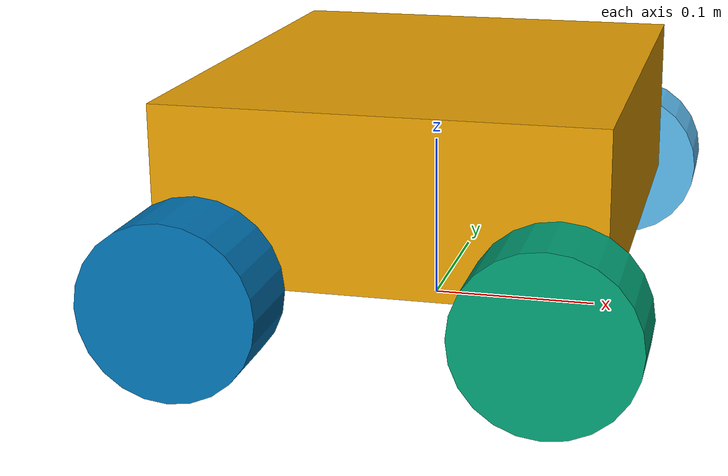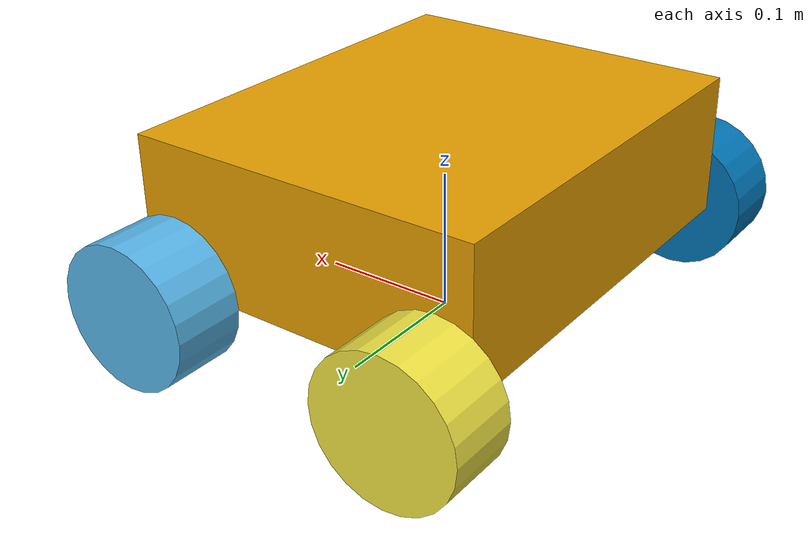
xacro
<?xml version="1.0" ?>
<!-- |    This document was autogenerated by xacro from ../../../src/nucobot/src/nucobot_simulator/nucobot_description/sdf/model.urdf | -->
<!-- |    EDITING THIS FILE BY HAND IS NOT RECOMMENDED                                 | -->
<robot name="nucobot">
  <joint name="nucobot__left_front_wheel_hinge" type="fixed">
    <parent link="nucobot__chassis"/>
    <child link="nucobot__left_front_wheel"/>
    <origin rpy="0      1.5707  1.5707" xyz="0.09999  0.14499  0.04999"/>
    <axis xyz="9.00000000e-05   9.00000000e-05   1.00000000e+00"/>
    <limit effort="0" lower="0" upper="0" velocity="0"/>
  </joint>
  <joint name="nucobot__right_front_wheel_hinge" type="fixed">
    <parent link="nucobot__chassis"/>
    <child link="nucobot__right_front_wheel"/>
    <origin rpy="0      1.5707  1.5707" xyz="0.1     -0.14499  0.05"/>
    <axis xyz="9.00000000e-05   9.00000000e-05   1.00000000e+00"/>
    <limit effort="0" lower="0" upper="0" velocity="0"/>
  </joint>
  <joint name="nucobot__left_back_wheel_hinge" type="fixed">
    <parent link="nucobot__chassis"/>
    <child link="nucobot__left_back_wheel"/>
    <origin rpy="0      1.5707  1.5707" xyz="-0.1      0.14499  0.04999"/>
    <axis xyz="9.00000000e-05   9.00000000e-05   1.00000000e+00"/>
    <limit effort="0" lower="0" upper="0" velocity="0"/>
  </joint>
  <joint name="nucobot__right_back_wheel_hinge" type="fixed">
    <parent link="nucobot__chassis"/>
    <child link="nucobot__right_back_wheel"/>
    <origin rpy="0      1.5707  1.5707" xyz="-0.09999 -0.14499  0.05"/>
    <axis xyz="9.00000000e-05   9.00000000e-05   1.00000000e+00"/>
    <limit effort="0" lower="0" upper="0" velocity="0"/>
  </joint>
  <link name="nucobot__chassis">
    <inertial>
      <mass value="0"/>
      <origin rpy="0  0  0" xyz="0   0   0.1"/>
      <inertia ixx="0" ixy="0" ixz="0" iyy="0" iyz="0" izz="0"/>
    </inertial>
    <collision name="nucobot__collision">
      <origin rpy="0  0  0" xyz="0   0   0.1"/>
      <geometry>
        <box size=".25 .3 .1"/>
      </geometry>
    </collision>
    <visual name="nucobot__visual">
      <origin rpy="0  0  0" xyz="0   0   0.1"/>
      <geometry>
        <box size=".25 .3 .1"/>
      </geometry>
    </visual>
  </link>
  <link name="nucobot__left_front_wheel">
    <inertial>
      <mass value="0"/>
      <origin rpy="0  0  0" xyz="0    0    0.03"/>
      <inertia ixx="0" ixy="0" ixz="0" iyy="0" iyz="0" izz="0"/>
    </inertial>
    <collision name="nucobot__collision">
      <origin rpy="0  0  0" xyz="0    0    0.03"/>
      <geometry>
        <cylinder length=".05" radius=".05"/>
      </geometry>
    </collision>
    <visual name="nucobot__visual">
      <origin rpy="0  0  0" xyz="0    0    0.03"/>
      <geometry>
        <cylinder length=".05" radius=".05"/>
      </geometry>
    </visual>
  </link>
  <link name="nucobot__right_front_wheel">
    <inertial>
      <mass value="0"/>
      <origin rpy="0  0  0" xyz="0    0   -0.03"/>
      <inertia ixx="0" ixy="0" ixz="0" iyy="0" iyz="0" izz="0"/>
    </inertial>
    <collision name="nucobot__collision">
      <origin rpy="0  0  0" xyz="0    0   -0.03"/>
      <geometry>
        <cylinder length=".05" radius=".05"/>
      </geometry>
    </collision>
    <visual name="nucobot__visual">
      <origin rpy="0  0  0" xyz="0    0   -0.03"/>
      <geometry>
        <cylinder length=".05" radius=".05"/>
      </geometry>
    </visual>
  </link>
  <link name="nucobot__left_back_wheel">
    <inertial>
      <mass value="0"/>
      <origin rpy="0  0  0" xyz="0    0    0.03"/>
      <inertia ixx="0" ixy="0" ixz="0" iyy="0" iyz="0" izz="0"/>
    </inertial>
    <collision name="nucobot__collision">
      <origin rpy="0  0  0" xyz="0    0    0.03"/>
      <geometry>
        <cylinder length=".05" radius=".05"/>
      </geometry>
    </collision>
    <visual name="nucobot__visual">
      <origin rpy="0  0  0" xyz="0    0    0.03"/>
      <geometry>
        <cylinder length=".05" radius=".05"/>
      </geometry>
    </visual>
  </link>
  <link name="nucobot__right_back_wheel">
    <inertial>
      <mass value="0"/>
      <origin rpy="0  0  0" xyz="0    0   -0.03"/>
      <inertia ixx="0" ixy="0" ixz="0" iyy="0" iyz="0" izz="0"/>
    </inertial>
    <collision name="nucobot__collision">
      <origin rpy="0  0  0" xyz="0    0   -0.03"/>
      <geometry>
        <cylinder length=".05" radius=".05"/>
      </geometry>
    </collision>
    <visual name="nucobot__visual">
      <origin rpy="0  0  0" xyz="0    0   -0.03"/>
      <geometry>
        <cylinder length=".05" radius=".05"/>
      </geometry>
    </visual>
  </link>
</robot>
